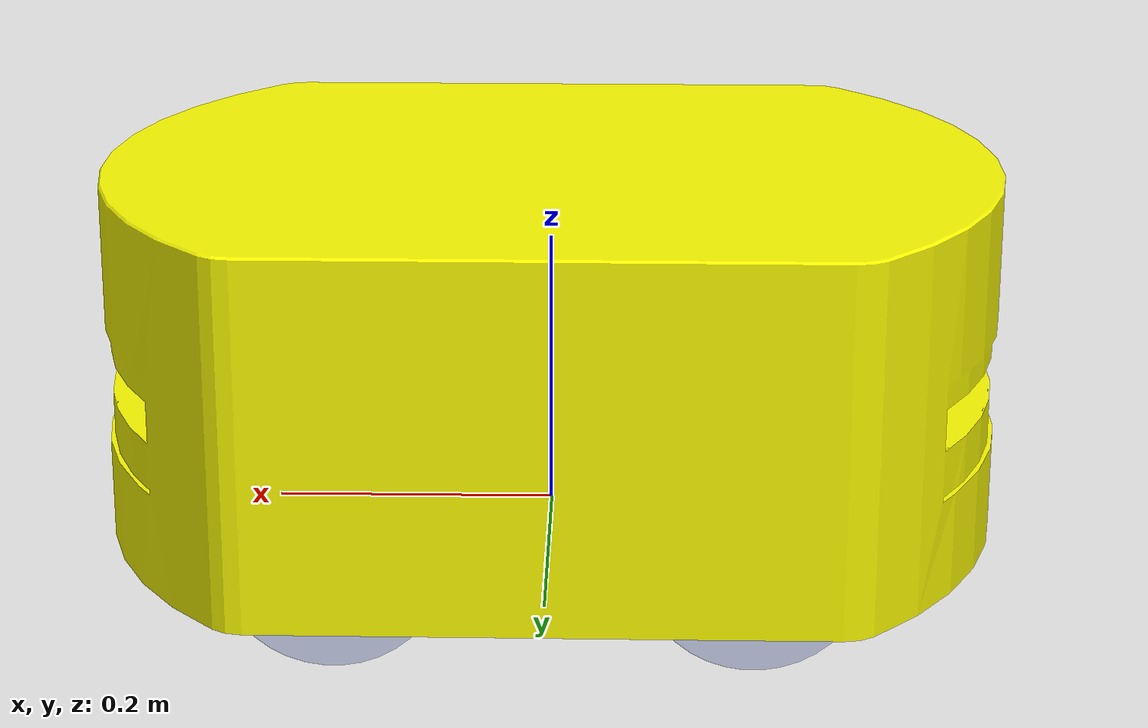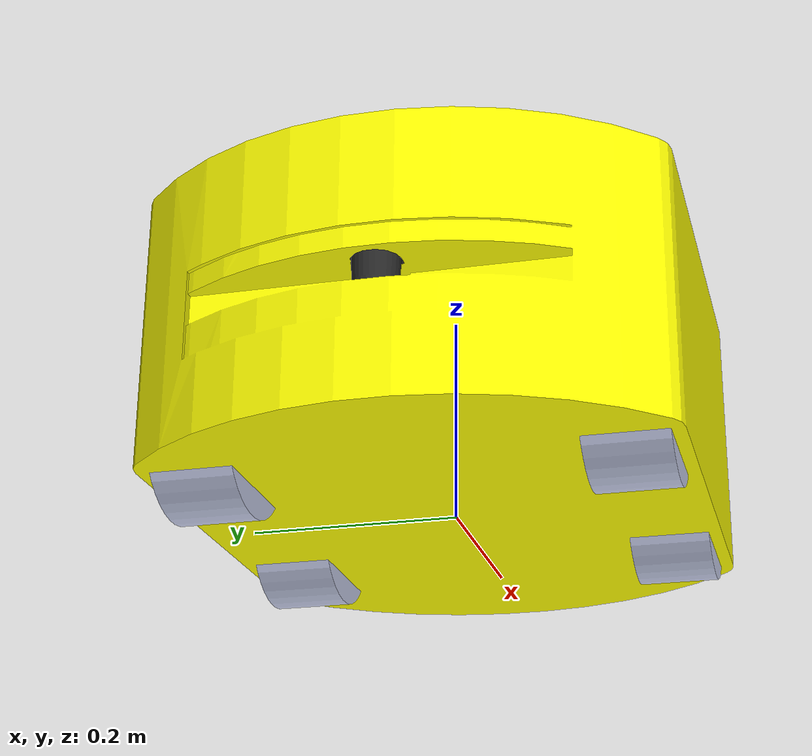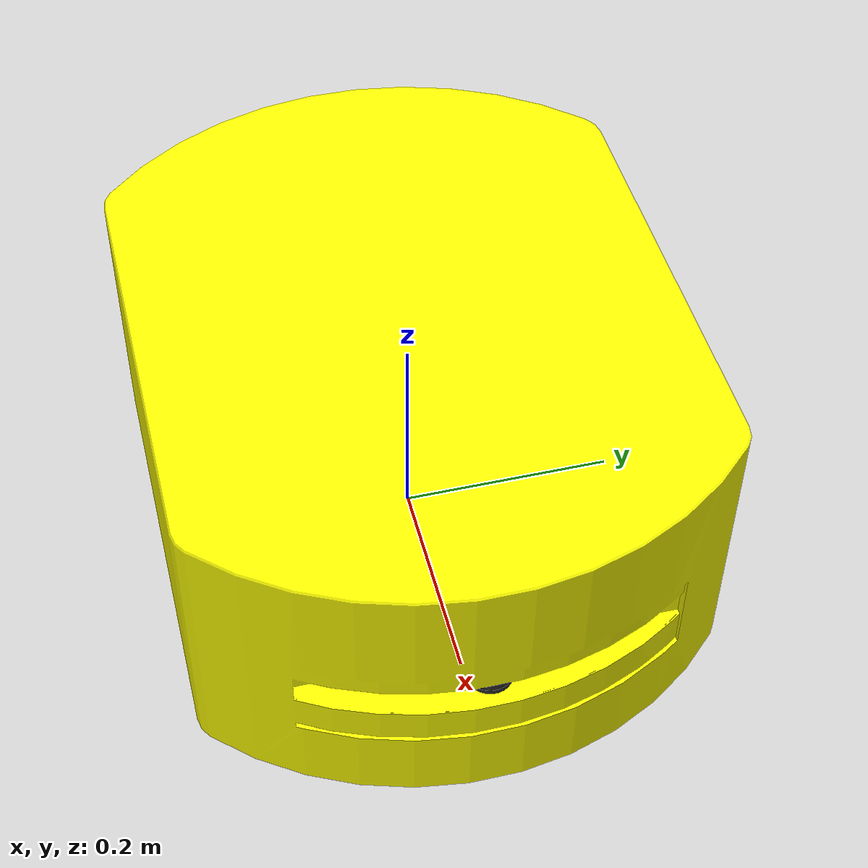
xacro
<?xml version="1.0"?>
<robot xmlns:xacro="http://www.ros.org/wiki/xacro"
       xmlns:sensor="http://playerstage.sourceforge.net/gazebo/xmlschema/#sensor"
       xmlns:controller="http://playerstage.sourceforge.net/gazebo/xmlschema/#controller"
       xmlns:interface="http://playerstage.sourceforge.net/gazebo/xmlschema/#interface"
  name="final_aiv_alpha1">
   <xacro:macro name="default_inertial" params="mass">
               <inertial>
                       <mass value="${mass}" />
                       <inertia ixx="1.0" ixy="0.0" ixz="0.0"
                                iyy="1.0" iyz="0.0"
                                izz="1.0" />
               </inertial>
	</xacro:macro>

  <link name="base_footprint">
	<visual>
		<geometry>
			<box size="0.001 0.001 0.001"/>
		</geometry>
		<origin rpy="0 0 0" xyz="0 0 0"/>
	</visual>
	<xacro:default_inertial mass="0.0001"/>
  </link>
 <gazebo reference="base_footprint">
		<material>Gazebo/Green</material>
		<turnGravityOff>false</turnGravityOff>
	</gazebo>

   <joint name="base_footprint_joint" type="fixed">
		<origin xyz="0 0 0" rpy="0 0 0"/>
		<parent link="base_footprint" />
		<child link="base_link" />
	</joint>
  <link
    name="base_link">
    <inertial>
      <origin
        xyz="8.52900363862556E-17 -0.00156394179945474 0.129518871317834"
        rpy="0 0 0" />
      <mass
        value="152.136546659951" />
      <inertia
        ixx="4.14561167080814"
        ixy="1.08997913319055E-05"
        ixz="6.11707533114008E-16"
        iyy="5.38628750439474"
        iyz="-0.0048732210756713"
        izz="7.3945608306805" />
    </inertial>
    <visual>
      <origin
        xyz="0 0 0"
        rpy="0 0 0" />
      <geometry>
        <mesh
          filename="package://final_aiv_alpha1/meshes/base_link.STL" />
      </geometry>
      <material
        name="">
        <color
          rgba="1 1 0 1" />
      </material>
    </visual>
    <collision>
      <origin
        xyz="0 0 0"
        rpy="0 0 0" />
      <geometry>
        <mesh
          filename="package://final_aiv_alpha1/meshes/base_link.STL" />
      </geometry>
    </collision>
  </link>
 <gazebo reference="base_link">
    <material>Gazebo/Orange</material>
  </gazebo>
  <link
    name="right_wheel1">
    <inertial>
      <origin
        xyz="-6.55281384709383E-13 -2.32827646051703E-13 0.0479999999994312"
        rpy="0 0 0" />
      <mass
        value="1.38940851892519" />
      <inertia
        ixx="0.00276634374084104"
        ixy="-3.38627612015008E-35"
        ixz="-6.86661375907486E-20"
        iyy="0.00276634374084104"
        iyz="-3.0057768047017E-35"
        izz="0.00419515021413011" />
    </inertial>
    <visual>
      <origin
        xyz="0 0 0"
        rpy="0 0 0" />
      <geometry>
        <mesh
          filename="package://final_aiv_alpha1/meshes/right_wheel1.STL" />
      </geometry>
      <material
        name="">
        <color
          rgba="0.792156862745098 0.819607843137255 0.933333333333333 1" />
      </material>
    </visual>
    <collision>
      <origin
        xyz="0 0 0"
        rpy="0 0 0" />
      <geometry>
        <mesh
          filename="package://final_aiv_alpha1/meshes/right_wheel1.STL" />
      </geometry>
    </collision>
  </link>
   <gazebo reference="right_wheel1">
         <mu1 value="1.0"/>
         <mu2 value="1.0"/>
         <kp  value="10000000.0" />
         <kd  value="1.0" />
         <fdir1 value="1 0 0"/>
	 <material>Gazebo/Black</material>
          <turnGravityOff>false</turnGravityOff> <turnGravityOff>false</turnGravityOff>
      </gazebo>
  <joint
    name="base_to_wheel1"
    type="continuous">
    <origin
      xyz="0.139897063904446 0.14156844913427 0.0450000000000102"
      rpy="1.5707963267949 0 3.14159265358979" />
    <parent
      link="base_link" />
    <child
      link="right_wheel1" />
    <axis
      xyz="0 0 1" />
  </joint>
 <transmission name="right_wheel1_joint_trans">
      <type>transmission_interface/SimpleTransmission</type>
      <joint name="base_to_wheel1" />
      <actuator name="right_wheel1_joint_motor">
        <hardwareInterface>EffortJointInterface</hardwareInterface>
        <mechanicalReduction>1</mechanicalReduction>
      </actuator>
    </transmission>
  <link
    name="left_wheel2">
    <inertial>
      <origin
        xyz="-3.63903351896511E-13 -2.53304321962133E-13 -0.0480000000000041"
        rpy="0 0 0" />
      <mass
        value="1.38940851892519" />
      <inertia
        ixx="0.00276634374084104"
        ixy="-2.74081616441698E-35"
        ixz="1.00733666245754E-17"
        iyy="0.00276634374084104"
        iyz="5.47129115782852E-36"
        izz="0.00419515021413011" />
    </inertial>
    <visual>
      <origin
        xyz="0 0 0"
        rpy="0 0 0" />
      <geometry>
        <mesh
          filename="package://final_aiv_alpha1/meshes/left_wheel2.STL" />
      </geometry>
      <material
        name="">
        <color
          rgba="0.792156862745098 0.819607843137255 0.933333333333333 1" />
      </material>
    </visual>
    <collision>
      <origin
        xyz="0 0 0"
        rpy="0 0 0" />
      <geometry>
        <mesh
          filename="package://final_aiv_alpha1/meshes/left_wheel2.STL" />
      </geometry>
    </collision>
  </link>
   <gazebo reference="left_wheel2">
         <mu1 value="1.0"/>
         <mu2 value="1.0"/>
         <kp  value="10000000.0" />
         <kd  value="1.0" />
         <fdir1 value="1 0 0"/>
	 <material>Gazebo/Black</material>
        <turnGravityOff>false</turnGravityOff> <turnGravityOff>false</turnGravityOff>
   </gazebo>
  <joint
    name="base_to_wheel2"
    type="continuous">
    <origin
      xyz="0.139897063904454 -0.141724083720374 0.0450000000000127"
      rpy="1.5707963267949 0 3.14159265358979" />
    <parent
      link="base_link" />
    <child
      link="left_wheel2" />
    <axis
      xyz="0 0 1" />
  </joint>
     <transmission name="left_wheel2_joint_trans">
      <type>transmission_interface/SimpleTransmission</type>
      <joint name="base_to_wheel2" />
      <actuator name="left_wheel2_joint_motor">
        <hardwareInterface>EffortJointInterface</hardwareInterface>
        <mechanicalReduction>1</mechanicalReduction>
      </actuator>
    </transmission>
  <link
    name="left_wheel3">
    <inertial>
      <origin
        xyz="-3.55021567699509E-13 3.14130665923784E-13 -0.0480000000000076"
        rpy="0 0 0" />
      <mass
        value="1.38940851892519" />
      <inertia
        ixx="0.00276634374084104"
        ixy="2.74301311244906E-35"
        ixz="1.01409598537663E-17"
        iyy="0.00276634374084104"
        iyz="4.11510363356561E-35"
        izz="0.00419515021413011" />
    </inertial>
    <visual>
      <origin
        xyz="0 0 0"
        rpy="0 0 0" />
      <geometry>
        <mesh
          filename="package://final_aiv_alpha1/meshes/left_wheel3.STL" />
      </geometry>
      <material
        name="">
        <color
          rgba="0.792156862745098 0.819607843137255 0.933333333333333 1" />
      </material>
    </visual>
    <collision>
      <origin
        xyz="0 0 0"
        rpy="0 0 0" />
      <geometry>
        <mesh
          filename="package://final_aiv_alpha1/meshes/left_wheel3.STL" />
      </geometry>
    </collision>
  </link>
  <gazebo reference="left_wheel3">
	 <mu1 value="1.0"/>
         <mu2 value="1.0"/>
         <kp  value="10000000.0" />
         <kd  value="1.0" />
         <fdir1 value="1 0 0"/>
	 <material>Gazebo/Black</material>
        <turnGravityOff>false</turnGravityOff> <turnGravityOff>false</turnGravityOff>
   </gazebo>
  <joint
    name="base_to_wheel3"
    type="continuous">
    <origin
      xyz="-0.139482853114889 -0.141724083720375 0.0449999999997022"
      rpy="1.5707963267949 0 3.14159265358979" />
    <parent
      link="base_link" />
    <child
      link="left_wheel3" />
    <axis
      xyz="0 0 1" />
  </joint>
  <transmission name="left_wheel3_joint_trans">
      <type>transmission_interface/SimpleTransmission</type>
      <joint name="base_to_wheel3" />
      <actuator name="left_wheel3_joint_motor">
        <hardwareInterface>EffortJointInterface</hardwareInterface>
        <mechanicalReduction>1</mechanicalReduction>
      </actuator>
    </transmission>
  <link
    name="right_wheel4">
    <inertial>
      <origin
        xyz="3.42337269643167E-13 -2.43756403950357E-13 0.0480000000000133"
        rpy="0 0 0" />
      <mass
        value="1.38940851892519" />
      <inertia
        ixx="0.00276634374084104"
        ixy="-1.09847401603853E-38"
        ixz="-6.86661375907486E-20"
        iyy="0.00276634374084104"
        iyz="-8.15262893040505E-36"
        izz="0.00419515021413011" />
    </inertial>
    <visual>
      <origin
        xyz="0 0 0"
        rpy="0 0 0" />
      <geometry>
        <mesh
          filename="package://final_aiv_alpha1/meshes/right_wheel4.STL" />
      </geometry>
      <material
        name="">
        <color
          rgba="0.792156862745098 0.819607843137255 0.933333333333333 1" />
      </material>
    </visual>
    <collision>
      <origin
        xyz="0 0 0"
        rpy="0 0 0" />
      <geometry>
        <mesh
          filename="package://final_aiv_alpha1/meshes/right_wheel4.STL" />
      </geometry>
    </collision>
  </link>
  <gazebo reference="right_wheel4">
	 <mu1 value="1.0"/>
         <mu2 value="1.0"/>
         <kp  value="10000000.0" />
         <kd  value="1.0" />
         <fdir1 value="1 0 0"/>
	 <material>Gazebo/Black</material>
        <turnGravityOff>false</turnGravityOff> <turnGravityOff>false</turnGravityOff>
      </gazebo>
  <joint
    name="base_to_wheel4"
    type="continuous">
    <origin
      xyz="-0.139482853115031 0.14156844913422 0.0449999999996804"
      rpy="1.5707963267949 0 3.14159265358979" />
    <parent
      link="base_link" />
    <child
      link="right_wheel4" />
    <axis
      xyz="0 0 1" />
  </joint>
<transmission name="right_wheel4_joint_trans">
      <type>transmission_interface/SimpleTransmission</type>
      <joint name="base_to_wheel4" />
      <actuator name="right_wheel4_joint_motor">
        <hardwareInterface>EffortJointInterface</hardwareInterface>
        <mechanicalReduction>1</mechanicalReduction>
      </actuator>
    </transmission>
  <link
    name="hokuyo_link_front">
    <inertial>
      <origin
        xyz="-0.000780692813444839 4.15767225388119E-05 -0.00546903856585154"
        rpy="0 0 0" />
      <mass
        value="0.134683421856803" />
      <inertia
        ixx="7.23289314303304E-05"
        ixy="3.07307453428353E-07"
        ixz="-6.60889302498486E-07"
        iyy="7.60198201005007E-05"
        iyz="1.05297506302458E-07"
        izz="4.80658661333216E-05" />
    </inertial>
    <visual>
      <origin
        xyz="0 0 0"
        rpy="0 0 0" />
      <geometry>
        <mesh
          filename="package://final_aiv_alpha1/meshes/hokuyo_Link_front.STL" />
      </geometry>
      <material
        name="">
        <color
          rgba="0.156862745098039 0.156862745098039 0.156862745098039 1" />
      </material>
    </visual>
    <collision>
      <origin
        xyz="0 0 0"
        rpy="0 0 0" />
      <geometry>
        <mesh
          filename="package://final_aiv_alpha1/meshes/hokuyo_Link_front.STL" />
      </geometry>
    </collision>
  </link>
  <joint
    name="hokuyo_link__front_joint"
    type="fixed">
    <origin
      xyz="0.285 0 0.138"
      rpy="-3.1416 7.3143E-29 5.1523E-43" />
    <parent
      link="base_link" />
    <child
      link="hokuyo_link_front" />
    <axis
      xyz="0 0 0" />
  </joint>
  <link
    name="hokuyo_link_back">
    <inertial>
      <origin
        xyz="-0.00078069281344495 4.15767225387963E-05 -0.00546903856585151"
        rpy="0 0 0" />
      <mass
        value="0.134683421856803" />
      <inertia
        ixx="7.23289314303307E-05"
        ixy="3.07307453428344E-07"
        ixz="-6.60889302498534E-07"
        iyy="7.6019820100501E-05"
        iyz="1.05297506302472E-07"
        izz="4.80658661333217E-05" />
    </inertial>
    <visual>
      <origin
        xyz="0 0 0"
        rpy="0 0 0" />
      <geometry>
        <mesh
          filename="package://final_aiv_alpha1/meshes/hokuyo_Link_back.STL" />
      </geometry>
      <material
        name="">
        <color
          rgba="0.156862745098039 0.156862745098039 0.156862745098039 1" />
      </material>
    </visual>
    <collision>
      <origin
        xyz="0 0 0"
        rpy="0 0 0" />
      <geometry>
        <mesh
          filename="package://final_aiv_alpha1/meshes/hokuyo_Link_back.STL" />
      </geometry>
    </collision>
  </link>
  <joint
    name="hokuyo_link_back_joint"
    type="fixed">
    <origin
      xyz="-0.28466 0 0.138"
      rpy="-3.1416 0 3.1416" />
    <parent
      link="base_link" />
    <child
      link="hokuyo_link_back" />
    <axis
      xyz="0 0 0" />
  </joint>

 <!-- ros_control plugin -->
  <gazebo>
    <plugin name="gazebo_ros_control" filename="libgazebo_ros_control.so">
      <robotNamespace>/robot</robotNamespace>

    </plugin>
  </gazebo>

<!-- hokuyo -->
  <gazebo reference="hokuyo_link_front">
    <sensor type="ray" name="front_hokuyo_sensor">
      <pose>0 0 0 0 0 0</pose>
      <visualize>false</visualize>
      <update_rate>40</update_rate>
      <ray>
        <scan>
          <horizontal>
            <samples>720</samples>
            <resolution>1</resolution>
            <min_angle>-1.570796</min_angle>
            <max_angle>1.570796</max_angle>
          </horizontal>
        </scan>
        <range>
          <min>0.10</min>
          <max>10.0</max>
          <resolution>0.001</resolution>
        </range>
        <noise>
          <type>gaussian</type>
          <mean>0.0</mean>
          <stddev>0.01</stddev>
        </noise>
      </ray>
      <plugin name="gazebo_ros_head_hokuyo_controller" filename="libgazebo_ros_laser.so">
        <topicName>/robot/laser/scan1</topicName>
        <frameName>hokuyo_link_front</frameName>
      </plugin>
    </sensor>
  </gazebo>

<!-- hokuyo -->
  <gazebo reference="hokuyo_link_back">
    <sensor type="ray" name="rear_hokuyo_sensor">
      <pose>0 0 0 0 0 3.14159</pose>
      <visualize>false</visualize>
      <update_rate>40</update_rate>
      <ray>
        <scan>
          <horizontal>
            <samples>720</samples>
            <resolution>1</resolution>
            <min_angle>-1.570796</min_angle>
            <max_angle>1.570796</max_angle>
          </horizontal>
        </scan>
        <range>
          <min>0.10</min>
          <max>10.0</max>
          <resolution>0.001</resolution>
        </range>
        <noise>
          <type>gaussian</type>
          <mean>0.0</mean>
          <stddev>0.01</stddev>
        </noise>
      </ray>
      <plugin name="gazebo_ros_head_hokuyo_controller" filename="libgazebo_ros_laser.so">
        <topicName>/robot/laser/scan2</topicName>
        <frameName>hokuyo_link_back</frameName>
      </plugin>
    </sensor>
  </gazebo>

 <!-- Drive controller -->
<gazebo>
  <plugin name="skid_steer_drive_controller" filename="libgazebo_ros_skid_steer_drive.so">
      <alwaysOn>true</alwaysOn>
    <updateRate>100.0</updateRate>
    <robotNamespace>/</robotNamespace>
    <leftFrontJoint>base_to_wheel1</leftFrontJoint>
    <rightFrontJoint>base_to_wheel2</rightFrontJoint>
    <leftRearJoint>base_to_wheel4</leftRearJoint>
    <rightRearJoint>base_to_wheel3</rightRearJoint>
    <wheelSeparation>1.132</wheelSeparation>
    <wheelDiameter>0.154</wheelDiameter>
      <torque>30</torque>
      <commandTopic>cmd_vel</commandTopic>
      <odometryTopic>odom</odometryTopic>
      <odometryFrame>odom</odometryFrame>
    <robotBaseFrame>base_footprint</robotBaseFrame>
    <broadcastTF>1</broadcastTF>
  </plugin>
</gazebo>
</robot>
